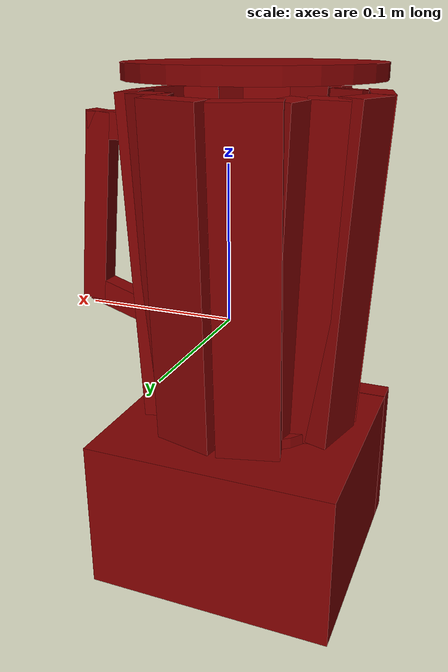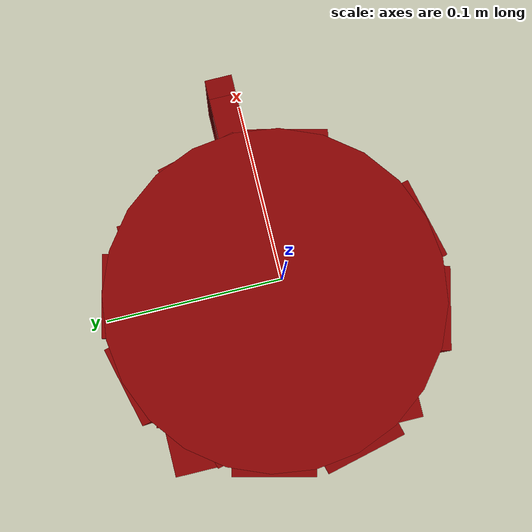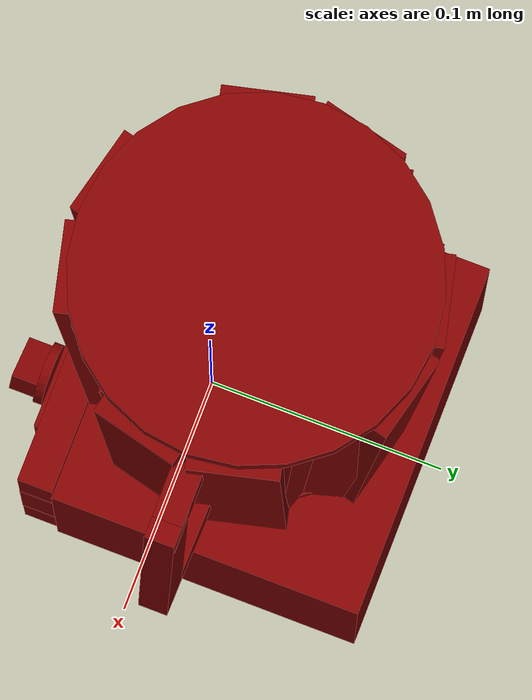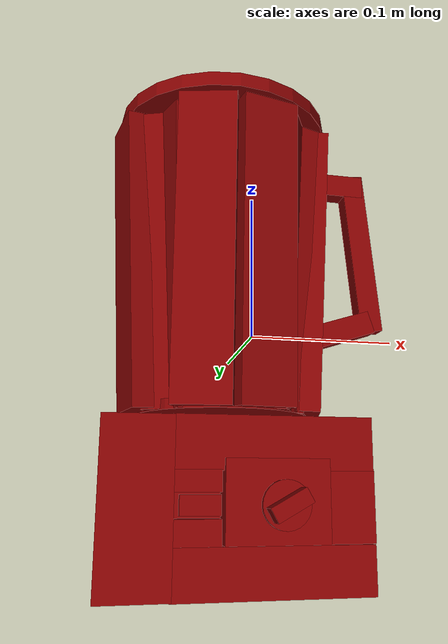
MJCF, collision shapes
<?xml version='1.0' encoding='UTF-8'?>
<mujoco model="model">
  <option timestep="0.002" gravity="0.0 0.0 -9.81"/>
  <compiler angle="radian"/>
  <asset>
    <mesh file="visuals/Blade001.obj" name="Blade001_vis"/>
    <mesh file="visuals/Body001.obj" name="Body001_vis"/>
    <mesh file="visuals/Button001.obj" name="Button001_vis"/>
    <mesh file="visuals/Jug001.obj" name="Jug001_vis"/>
    <mesh file="visuals/Jug001_Clear.obj" name="Jug001_Clear_vis"/>
    <mesh file="visuals/Knob001.obj" name="Knob001_vis"/>
    <mesh file="visuals/Lid001.obj" name="Lid001_vis"/>
    <texture file="visuals/T_BC001.png" name="Body001_material" type="2d"/>
    <material name="Body001_material" rgba="1 1 1 1.0" texture="Body001_material" shininess="0.1" specular="4"/>
    <texture file="visuals/T_BC001.png" name="Button001_material" type="2d"/>
    <material name="Button001_material" rgba="1 1 1 1.0" texture="Button001_material" shininess="0.1" specular="4"/>
    <texture file="visuals/T_BC001.png" name="Jug001_material" type="2d"/>
    <material name="Jug001_material" rgba="1 1 1 1.0" texture="Jug001_material" shininess="0.1" specular="4"/>
    <texture file="visuals/T_BC001.png" name="Blade001_material" type="2d"/>
    <material name="Blade001_material" rgba="1 1 1 1.0" texture="Blade001_material" shininess="0.1" specular="4"/>
    <material name="Jug001_Clear_material" rgba="0.32120847702026367 0.32120847702026367 0.32120847702026367 0.699999988079071" shininess="0.5" specular="0.33333333333333337"/>
    <texture file="visuals/T_BC001.png" name="Lid001_material" type="2d"/>
    <material name="Lid001_material" rgba="1 1 1 1.0" texture="Lid001_material" shininess="0.1" specular="4"/>
    <texture file="visuals/T_BC001.png" name="Knob001_material" type="2d"/>
    <material name="Knob001_material" rgba="1 1 1 1.0" texture="Knob001_material" shininess="0.1" specular="4"/>
  </asset>
  <default>
    <default class="visual">
      <geom conaffinity="0" contype="0" group="1" type="mesh"/>
    </default>
    <default class="collision">
      <geom group="0" rgba="0.5 0 0 0.5"/>
    </default>
    <default class="spawn">
      <geom group="0" rgba="1 1 1 0.5" contype="0" conaffinity="0"/>
      <site group="0" rgba="1 1 1 0.5"/>
    </default>
    <default class="region">
      <geom group="1" conaffinity="0" contype="0" rgba="0 1 0 0"/>
    </default>
  </default>
  <worldbody>
    <body>
      <body name="object">
        <geom mesh="Body001_vis" type="mesh" solimp="0.998 0.998 0.001" solref="0.001 1" friction="0.95 0.3 0.1" class="visual" material="Body001_material"/>
        <geom class="collision" type="box" pos="-0.01801905 0.01927943 -0.10990967" size="0.07815690338611603 0.06847110390663147 0.04907001182436943" quat="1.0 0.0 0.0 0.0" density="1000.0"/>
        <geom class="collision" type="box" pos="-0.07594047 -0.05768858 -0.10990967" size="0.020235484465956688 0.008066640235483646 0.04907001182436943" quat="1.0 0.0 0.0 0.0" density="1000.0"/>
        <geom class="collision" type="box" pos="0.00057280 -0.05737055 -0.07583434" size="0.015359551645815372 0.0077486238442361355 0.05754803121089935" quat="0.7071068286895752 -0.0 0.7071067690849304 0.0" density="1000.0"/>
        <geom class="collision" type="box" pos="0.00057280 -0.05737055 -0.14541952" size="0.013972073793411255 0.0077486238442361355 0.05754803121089935" quat="0.7071068286895752 -0.0 0.7071067690849304 0.0" density="1000.0"/>
        <geom class="collision" type="box" pos="0.04288949 -0.05737055 -0.11110424" size="0.01550364587455988 0.0077486238442361355 0.019938981160521507" quat="7.549790126404332e-08 0.0 1.0 0.0" density="1000.0"/>
        <geom class="collision" type="box" pos="0.00132513 -0.05934339 -0.10774335" size="0.029637819156050682 0.009721463546156883 0.02329987846314907" quat="7.549790126404332e-08 0.0 1.0 0.0" density="1000.0"/>
        <geom class="collision" type="box" pos="-0.04280856 -0.05737055 -0.12423170" size="0.007200377993285656 0.0077486238442361355 0.013396352529525757" quat="0.7071068286895752 -0.0 0.7071067690849304 0.0" density="1000.0"/>
        <geom class="collision" type="box" pos="-0.04280856 -0.05737055 -0.09677056" size="0.006119239144027233 0.0077486238442361355 0.013396352529525757" quat="0.7071068286895752 -0.0 0.7071067690849304 0.0" density="1000.0"/>
        <body name="Button001">
          <joint axis="0.0 1.0 0.0" pos="-0.04148375 -0.06553226 -0.10959767" limited="true" name="Button001_joint" range="0.0 0.002" type="slide" damping="1" frictionloss="1" armature=".01" stiffness="0.05"/>
          <geom mesh="Button001_vis" type="mesh" solimp="0.998 0.998 0.001" solref="0.001 1" friction="0.95 0.3 0.1" class="visual" material="Button001_material"/>
          <geom class="collision" type="box" pos="-0.04165496 -0.06482500 -0.10960305" size="0.005622386001050472 0.002874996280297637 0.011368107050657272" quat="0.7071068286895752 -0.0 0.7071067690849304 0.0" density="1000.0"/>
        </body>
        <body name="Jug001">
          <joint axis="0.0 0.0 1.0" pos="-0.01952333 0.01110385 -0.03470203" limited="true" name="Jug001_joint" range="0.0 0.1" type="slide" damping="1" frictionloss="1" armature=".01" stiffness="0.05"/>
          <geom mesh="Jug001_vis" type="mesh" solimp="0.998 0.998 0.001" solref="0.001 1" friction="0.95 0.3 0.1" class="visual" material="Jug001_material"/>
          <geom class="collision" type="cylinder" pos="-0.01913705 0.01130384 -0.03471947" size="0.03111385926604271 0.0028781581204384565" quat="1.0 0.0 0.0 0.0" density="1000.0"/>
          <geom class="collision" type="cylinder" pos="-0.01913705 0.01130384 -0.05077229" size="0.057082075625658035 0.0033115732949227095" quat="1.0 0.0 0.0 0.0" density="1000.0"/>
          <body name="Blade001">
            <joint axis="0.0 0.0 1.0" pos="-0.01952058 0.01110376 -0.00368441" limited="false" name="Blade001_joint" range="0 360" type="hinge" damping="1" frictionloss="1" armature=".01" stiffness="0.05"/>
            <geom mesh="Blade001_vis" type="mesh" solimp="0.998 0.998 0.001" solref="0.001 1" friction="0.95 0.3 0.1" class="visual" material="Blade001_material"/>
            <geom class="collision" type="cylinder" pos="-0.01985569 0.01151934 -0.00769829" size="0.031107977032661438 0.01745898835361004" quat="1.0 0.0 0.0 0.0" density="1000.0"/>
          </body>
          <body name="Jug001_Clear">
            <geom class="region" name="reg_int" type="box" pos="-0.017744735 0.011311644999999999 0.06950997" size="0.036117075 0.026396935 0.05607183"/>
            <geom mesh="Jug001_Clear_vis" type="mesh" solimp="0.998 0.998 0.001" solref="0.001 1" friction="0.95 0.3 0.1" class="visual" material="Jug001_Clear_material"/>
            <geom class="collision" type="box" pos="-0.00132453 0.07255533 0.04476300" size="0.018552467226982117 0.00687137758359313 0.09820038080215454" quat="0.12023793905973434 -0.0031014170963317156 0.02559821866452694 0.9924101829528809" density="1000.0"/>
            <geom class="collision" type="box" pos="0.06944145 0.01176525 0.12123640" size="0.016273844987154007 0.006255174987018108 0.008101827464997768" quat="1.0 0.0 0.0 0.0" density="1000.0"/>
            <geom class="collision" type="box" pos="0.08360144 0.01176526 0.06964146" size="0.06003568321466446 0.006255174987018108 0.008101828396320343" quat="0.6722349524497986 -0.0 -0.7403379082679749 -0.0" density="1000.0"/>
            <geom class="collision" type="box" pos="0.06702685 0.01176525 0.00981986" size="0.02311256155371666 0.006255174987018108 0.00810184981673956" quat="0.9880656599998474 9.18393884873699e-16 -0.15403316915035248 -2.0695718916385886e-08" density="1000.0"/>
            <geom class="collision" type="box" pos="-0.03922635 0.07255533 0.04476300" size="0.018552467226982117 0.00687137758359313 0.09820038080215454" quat="0.12023793905973434 -0.0031014170963317156 -0.02559821866452694 -0.9924101829528809" density="1000.0"/>
            <geom class="collision" type="box" pos="-0.00132453 -0.05096444 0.04476300" size="0.018552467226982117 0.00687137758359313 0.09820038080215454" quat="0.12023793905973434 0.0031014170963317156 0.02559821866452694 -0.9924101829528809" density="1000.0"/>
            <geom class="collision" type="box" pos="-0.03922635 -0.05096444 0.04476300" size="0.018552467226982117 0.00687137758359313 0.09820038080215454" quat="0.1202380582690239 0.0031014028936624527 -0.02559821680188179 0.9924101829528809" density="1000.0"/>
            <geom class="collision" type="box" pos="0.04136831 -0.00992281 0.04476300" size="0.018552467226982117 0.00687137758359313 0.09820038080215454" quat="0.7867610454559326 0.01590762846171856 0.020293695852160454 0.6167188882827759" density="1000.0"/>
            <geom class="collision" type="box" pos="0.04136831 0.02797901 0.04476300" size="0.018552467226982117 0.00687137758359313 0.09820038080215454" quat="0.6167187094688416 0.020293697714805603 0.015907639637589455 0.7867611646652222" density="1000.0"/>
            <geom class="collision" type="box" pos="-0.08191919 0.02797901 0.04476300" size="0.018552467226982117 0.00687137758359313 0.09820038080215454" quat="0.7867610454559326 -0.01590763032436371 -0.020293693989515305 0.6167188882827759" density="1000.0"/>
            <geom class="collision" type="box" pos="-0.08191919 -0.00992281 0.04476300" size="0.018552467226982117 0.00687137758359313 0.09820038080215454" quat="0.6167187094688416 -0.020293697714805603 -0.015907641500234604 0.7867611646652222" density="1000.0"/>
            <geom class="collision" type="box" pos="-0.06434205 -0.02134548 0.04476300" size="0.010820483788847923 0.006871378514915705 0.09820037335157394" quat="0.15854039788246155 -0.011242268607020378 -0.016341591253876686 0.9871532320976257" density="1000.0"/>
            <geom class="collision" type="box" pos="-0.05370912 -0.03127532 0.04476300" size="0.010820483788847923 0.006871378514915705 0.09820038080215454" quat="0.5689519047737122 0.0023401062935590744 -0.03543747961521149 0.8216035962104797" density="1000.0"/>
            <geom class="collision" type="box" pos="0.01513385 -0.03400349 0.04476300" size="0.010820483788847923 0.006871378514915705 0.09820038080215454" quat="0.5283477902412415 -0.008006410673260689 0.024510914459824562 -0.8486363887786865" density="1000.0"/>
            <geom class="collision" type="box" pos="0.02258557 -0.02351167 0.04476300" size="0.010820484720170498 0.006871378980576992 0.09820038080215454" quat="0.13653036952018738 -0.02827531099319458 0.020484820008277893 -0.9900203943252563" density="1000.0"/>
            <geom class="collision" type="box" pos="0.02540039 0.04410833 0.04476300" size="0.010820483788847923 0.006871378980576992 0.09820038080215454" quat="0.98287034034729 -0.01843164674937725 0.011580768041312695 -0.18300819396972656" density="1000.0"/>
            <geom class="collision" type="box" pos="0.01466051 0.05753875 0.04476300" size="0.010820482857525349 0.006871378514915705 0.09820038080215454" quat="0.7988603115081787 -0.008304612711071968 0.009356268681585789 -0.6013864874839783" density="1000.0"/>
            <geom class="collision" type="box" pos="-0.05268969 0.05760695 0.04476300" size="0.010820483788847923 0.006871378049254417 0.09820038080215454" quat="0.7913755178451538 -0.031811874359846115 -0.004071452189236879 0.6104885339736938" density="1000.0"/>
            <geom class="collision" type="box" pos="-0.06715687 0.04330374 0.04476300" size="0.010820483788847923 0.006871378980576992 0.09820038080215454" quat="0.9920954704284668 -0.028778061270713806 -0.023127730935811996 0.11993123590946198" density="1000.0"/>
          </body>
          <body name="Lid001">
            <joint axis="0.0 0.0 1.0" pos="-0.01952101 0.01110383 0.14321232" limited="true" name="Lid001_joint" range="0.0 0.1" type="slide" damping="1" frictionloss="1" armature=".01" stiffness="0.05"/>
            <geom mesh="Lid001_vis" type="mesh" solimp="0.998 0.998 0.001" solref="0.001 1" friction="0.95 0.3 0.1" class="visual" material="Lid001_material"/>
            <geom class="collision" type="cylinder" pos="-0.01985569 0.01151934 0.15375116" size="0.07351475954055786 0.0046503497287631035" quat="1.0 0.0 0.0 0.0" density="1000.0"/>
          </body>
        </body>
        <body name="Knob001">
          <joint axis="0.0 1.0 0.0" pos="0.00424393 -0.07910890 -0.10928665" limited="true" name="Knob001_joint" range="0.0 4.049163864626845" type="hinge" damping="0.05" frictionloss="0.1" armature="0.001"/>
          <geom mesh="Knob001_vis" type="mesh" solimp="0.998 0.998 0.001" solref="0.001 1" friction="0.95 0.3 0.1" class="visual" material="Knob001_material"/>
          <geom class="collision" type="cylinder" pos="0.00442496 -0.07349149 -0.10960335" size="0.013652672059834003 0.002001713728532195" quat="0.7071067094802856 -0.7071068286895752 -1.5700929612083792e-16 -2.2148510003422914e-23" density="0.001"/>
          <geom class="collision" type="box" pos="0.00443760 -0.08127745 -0.10948506" size="0.004442211706191301 0.005708749406039715 0.011259826831519604" quat="0.8617826700210571 0.0 0.5072776675224304 0.0" density="0.001"/>
        </body>
        <geom class="region" name="reg_main" type="box" pos="-0.019529525000000002 0.010843424999999997 0.0" size="0.076930525 0.07719210500000001 0.16069869"/>
      </body>
    </body>
  </worldbody>
  <actuator>
    <motor name="Button001_joint_actuator" joint="Button001_joint" gear="0.5"/>
    <motor name="Jug001_joint_actuator" joint="Jug001_joint" gear="0.5"/>
    <motor name="Knob001_joint_actuator" joint="Knob001_joint" gear="0.5"/>
    <motor name="Blade001_joint_actuator" joint="Blade001_joint" gear="20"/>
    <motor name="Lid001_joint_actuator" joint="Lid001_joint" gear="0.5"/>
  </actuator>
</mujoco>
